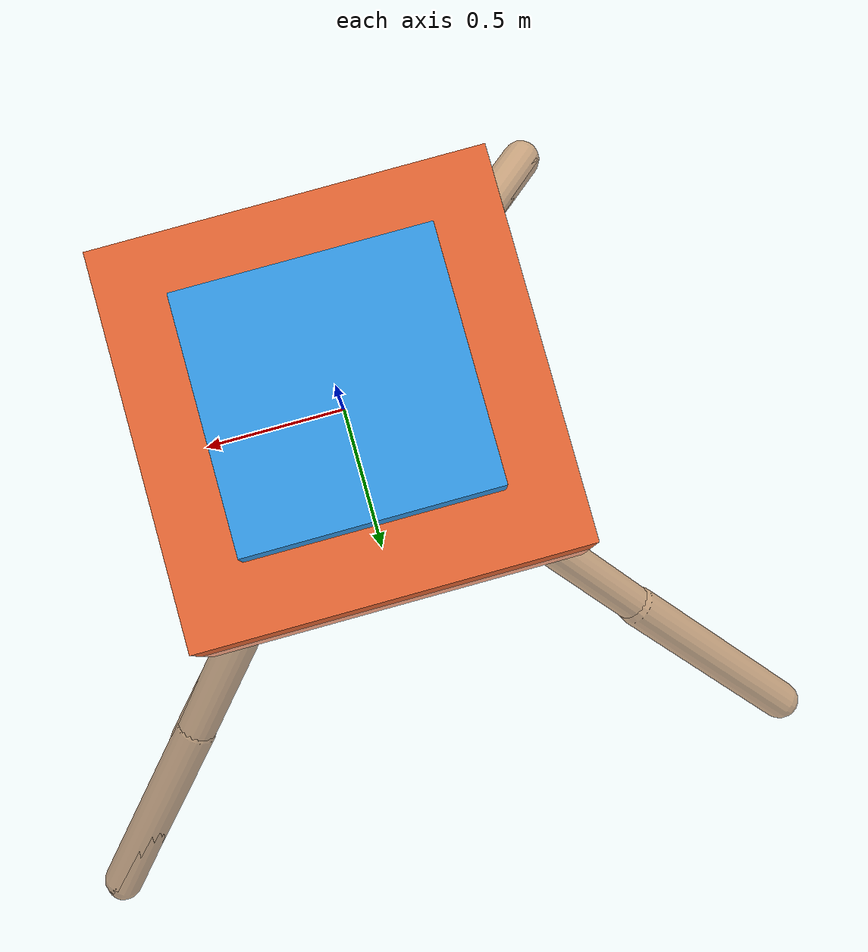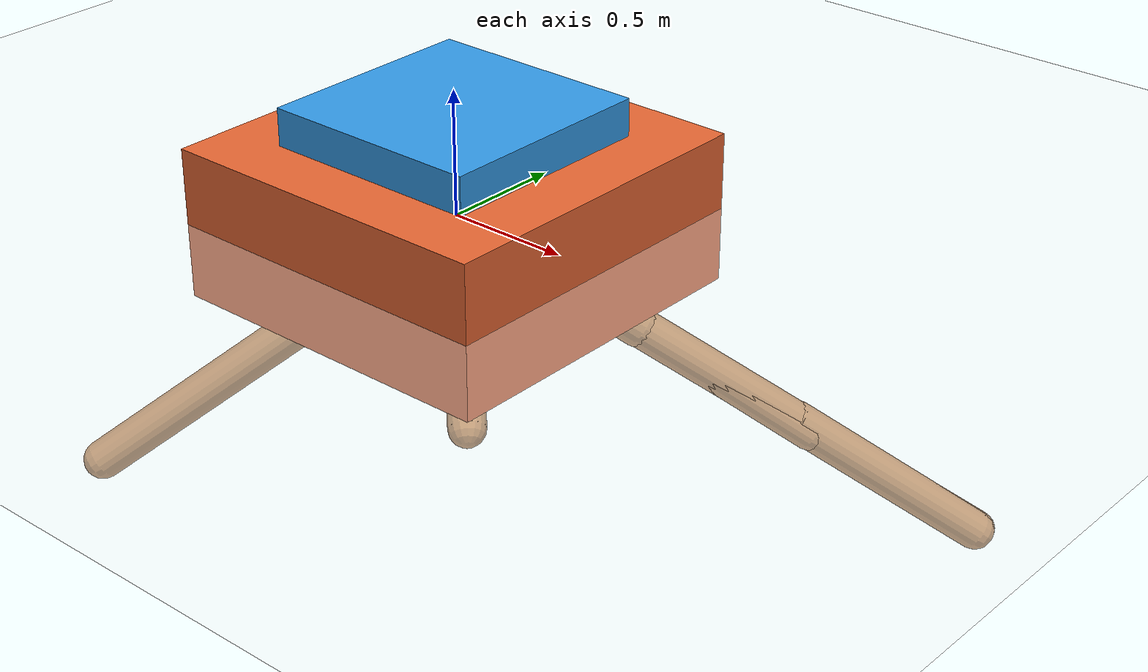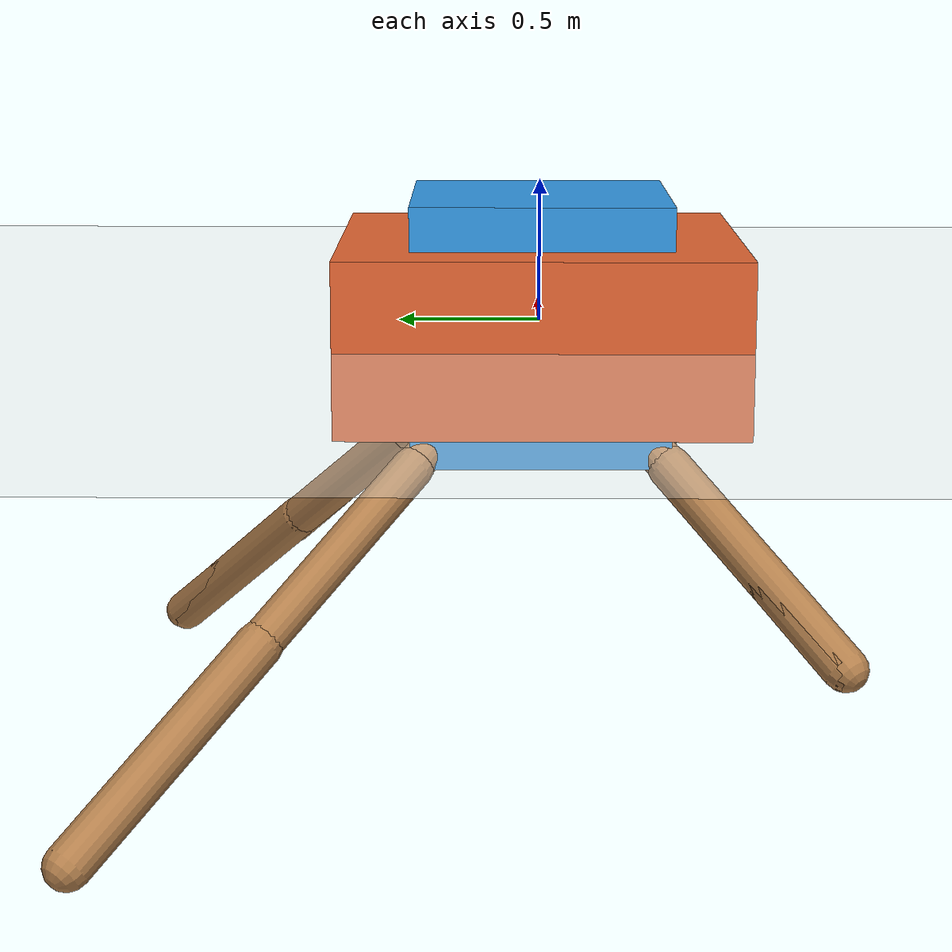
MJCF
<mujoco model="dex-gripper">
  <asset>
    <texture name="skybox" type="skybox" builtin="gradient" rgb1=".2 .3 .4" rgb2="0 0 0" width="800" height="800" mark="random" markrgb="1 1 1"/>
    <texture name="grid" type="2d" builtin="checker" rgb1=".2 .1 .2" rgb2=".3 .2 .3" width="300" height="300" mark="edge" markrgb=".3 .2 .3"/>
    <material name="grid" texture="grid" texrepeat="1 1" texuniform="true" reflectance=".2"/>
    <material name="self" rgba=".7 .5 .3 1"/>
  </asset>
  <visual>
    <headlight ambient=".4 .4 .4" diffuse=".8 .8 .8" specular="0.1 0.1 0.1"/>
    <map znear=".001"/>
    <quality shadowsize="16384"/>
  </visual>
  <compiler angle="degree" coordinate="global" inertiafromgeom="true"/>
  <option integrator="RK4" timestep="0.01"/>
  <default>
    <joint armature="1" damping="1" limited="true"/>
    <geom conaffinity="0" condim="3" density="5.0" friction="1 0.5 0.5" margin="0.01" rgba=".7 .5 .3 1"/>
  </default>
  <worldbody>
    <light cutoff="100" diffuse="1 1 1" dir="0.3 0 -1.3" directional="true" exponent="1" pos="-30 0 130" specular=".1 .1 .1"/>
    <geom conaffinity="1" condim="3" name="floor" pos="0 0 0" rgba="1 1 1 1" size="200 200 .125" type="plane" material="grid"/>
    <body name="0" pos="0 0 0" gravcomp="1">
      <camera name="track" mode="fixed" pos="0 10 5" quat="0 0 0.547 0.892"/>
      <geom pos="0 0 0" size="0.277879 0.207415 0.177367" type="ellipsoid"/>
      <joint name="root_x" type="slide" axis="1 0 0" pos="0 0 0" limited="false" armature="0" damping="0"/>
      <joint name="root_y" type="slide" axis="0 1 0" pos="0 0 0" limited="false" armature="0" damping="0"/>
      <joint name="root_z" type="slide" axis="0 0 1" pos="0 0 0" limited="false" armature="0" damping="0"/>
      <body name="1" pos="0 0 0" gravcomp="1">
        <joint axis="-0.707107 0.707107 0" name="1_joint" pos="0 0 0" range="-30 30" type="hinge" damping="0"/>
        <geom fromto="-0.047834 -0.048683 0.049412 0.484028 0.492623 -0.5" size="0.082565 0.082565 0.082565" type="capsule"/>
        <body name="11" pos="0.484028 0.492623 -0.5" gravcomp="1">
          <joint axis="-0.707107 0.707107 0" name="11_joint" pos="0.484028 0.492623 -0.5" range="-30 30" type="hinge" damping="0"/>
          <geom fromto="0.432467 0.440989 -0.448185 0.981582 0.990884 -1" size="0.07844 0.07844 0.07844" type="capsule"/>
          <body name="111" pos="0.981582 0.990884 -1" gravcomp="1">
            <joint axis="-0.707107 0.707107 0" name="111_joint" pos="0.981582 0.990884 -1" range="-30 30" type="hinge" damping="0"/>
            <geom fromto="0.922279 0.931628 -0.940681 1.481443 1.490348 -1.5" size="0.075522 0.075522 0.075522" type="capsule"/>
          </body>
          <body name="211" pos="0.981582 0.990884 -1" gravcomp="1">
            <joint axis="-0.707107 0.707107 0" name="211_joint" pos="0.981582 0.990884 -1" range="-30 30" type="hinge" damping="0"/>
            <geom fromto="0.927746 0.938368 -0.946061 1.480627 1.477694 -1.5" size="0.081019 0.081019 0.081019" type="capsule"/>
          </body>
        </body>
        <body name="21" pos="0.484028 0.492623 -0.5" gravcomp="1">
          <joint axis="-0.707107 0.707107 0" name="21_joint" pos="0.484028 0.492623 -0.5" range="-30 30" type="hinge" damping="0"/>
          <geom fromto="0.427438 0.438577 -0.443147 0.981711 0.967941 -1" size="0.07023 0.07023 0.07023" type="capsule"/>
        </body>
      </body>
      <body name="2" pos="0 0 0" gravcomp="1">
        <joint axis="-0.707107 -0.707107 0" name="2_joint" pos="0 0 0" range="-30 30" type="hinge" damping="0"/>
        <geom fromto="0.050603 -0.050309 0.050749 -0.498562 0.495667 -0.5" size="0.065987 0.065987 0.065987" type="capsule"/>
        <body name="12" pos="-0.498562 0.495667 -0.5" gravcomp="1">
          <joint axis="-0.707107 -0.707107 0" name="12_joint" pos="-0.498562 0.495667 -0.5" range="-30 30" type="hinge" damping="0"/>
          <geom fromto="-0.445229 0.440317 -0.444611 -0.980001 0.995322 -1" size="0.073923 0.073923 0.073923" type="capsule"/>
          <body name="112" pos="-0.980001 0.995322 -1" gravcomp="1">
            <joint axis="-0.707107 -0.707107 0" name="112_joint" pos="-0.980001 0.995322 -1" range="-30 30" type="hinge" damping="0"/>
            <geom fromto="-0.918475 0.933428 -0.938105 -1.477027 1.495319 -1.5" size="0.081111 0.081111 0.081111" type="capsule"/>
          </body>
          <body name="212" pos="-0.980001 0.995322 -1" gravcomp="1">
            <joint axis="-0.707107 -0.707107 0" name="212_joint" pos="-0.980001 0.995322 -1" range="-30 30" type="hinge" damping="0"/>
            <geom fromto="-0.917346 0.931779 -0.936424 -1.472754 1.495058 -1.5" size="0.076771 0.076771 0.076771" type="capsule"/>
          </body>
        </body>
      </body>
      <body name="3" pos="0 0 0" gravcomp="1">
        <joint axis="0.707107 -0.707107 0" name="3_joint" pos="0 0 0" range="-30 30" type="hinge" damping="0"/>
        <geom fromto="0.043938 0.045657 0.045735 -0.480352 -0.499152 -0.5" size="0.069596 0.069596 0.069596" type="capsule"/>
        <body name="13" pos="-0.480352 -0.499152 -0.5" gravcomp="1">
          <joint axis="0.707107 -0.707107 0" name="13_joint" pos="-0.480352 -0.499152 -0.5" range="-30 30" type="hinge" damping="0"/>
          <geom fromto="-0.42447 -0.443674 -0.443875 -0.978181 -0.993386 -1" size="0.076866 0.076866 0.076866" type="capsule"/>
        </body>
        <body name="23" pos="-0.480352 -0.499152 -0.5" gravcomp="1">
          <joint axis="0.707107 -0.707107 0" name="23_joint" pos="-0.480352 -0.499152 -0.5" range="-30 30" type="hinge" damping="0"/>
          <geom fromto="-0.421936 -0.442019 -0.441462 -0.979306 -0.987146 -1" size="0.073866 0.073866 0.073866" type="capsule"/>
        </body>
      </body>
      <body name="4" pos="0 0 0" gravcomp="1">
        <joint axis="0.707107 0.707107 0" name="4_joint" pos="0 0 0" range="-30 30" type="hinge" damping="0"/>
        <geom fromto="-0.050394 0.049708 0.050512 0.498835 -0.492045 -0.5" size="0.071046 0.071046 0.071046" type="capsule"/>
      </body>
    </body>
    <body name="box_1" pos="0 0 0">
      <freejoint name="box_1_joint"/>
      <geom name="box_1" type="box" size="0.45 0.45 0.45" rgba="0.2 0.6 0.9 1.0" contype="1" conaffinity="1" density="10" friction="2.5 0.1 0.05"/>
    </body>
    <body name="box_2" pos="3.0 0 0.425">
      <freejoint name="box_2_joint"/>
      <geom name="box_2" type="box" size="0.7 0.7 0.3" rgba="0.9 0.4 0.2 1.0" contype="1" conaffinity="1" density="10" friction="2.5 0.1 0.05"/>
    </body>
  </worldbody>
  <actuator>
    <motor name="root_x_motor" joint="root_x" gear="50" ctrllimited="true" ctrlrange="-1 1"/>
    <motor name="root_y_motor" joint="root_y" gear="50" ctrllimited="true" ctrlrange="-1 1"/>
    <motor name="root_z_motor" joint="root_z" gear="50" ctrllimited="true" ctrlrange="-1 1"/>
    <motor ctrllimited="true" ctrlrange="-1.0 1.0" joint="1_joint" gear="30.141408" name="1_joint"/>
    <motor ctrllimited="true" ctrlrange="-1.0 1.0" joint="2_joint" gear="58.739483" name="2_joint"/>
    <motor ctrllimited="true" ctrlrange="-1.0 1.0" joint="3_joint" gear="60.082545" name="3_joint"/>
    <motor ctrllimited="true" ctrlrange="-1.0 1.0" joint="4_joint" gear="86.495348" name="4_joint"/>
    <motor ctrllimited="true" ctrlrange="-1.0 1.0" joint="11_joint" gear="69.146138" name="11_joint"/>
    <motor ctrllimited="true" ctrlrange="-1.0 1.0" joint="12_joint" gear="77.243553" name="12_joint"/>
    <motor ctrllimited="true" ctrlrange="-1.0 1.0" joint="13_joint" gear="56.062374" name="13_joint"/>
    <motor ctrllimited="true" ctrlrange="-1.0 1.0" joint="21_joint" gear="89.241405" name="21_joint"/>
    <motor ctrllimited="true" ctrlrange="-1.0 1.0" joint="23_joint" gear="48.825348" name="23_joint"/>
    <motor ctrllimited="true" ctrlrange="-1.0 1.0" joint="111_joint" gear="71.302337" name="111_joint"/>
    <motor ctrllimited="true" ctrlrange="-1.0 1.0" joint="112_joint" gear="60.413974" name="112_joint"/>
    <motor ctrllimited="true" ctrlrange="-1.0 1.0" joint="211_joint" gear="44.295482" name="211_joint"/>
    <motor ctrllimited="true" ctrlrange="-1.0 1.0" joint="212_joint" gear="78.154007" name="212_joint"/>
  </actuator>
</mujoco>
